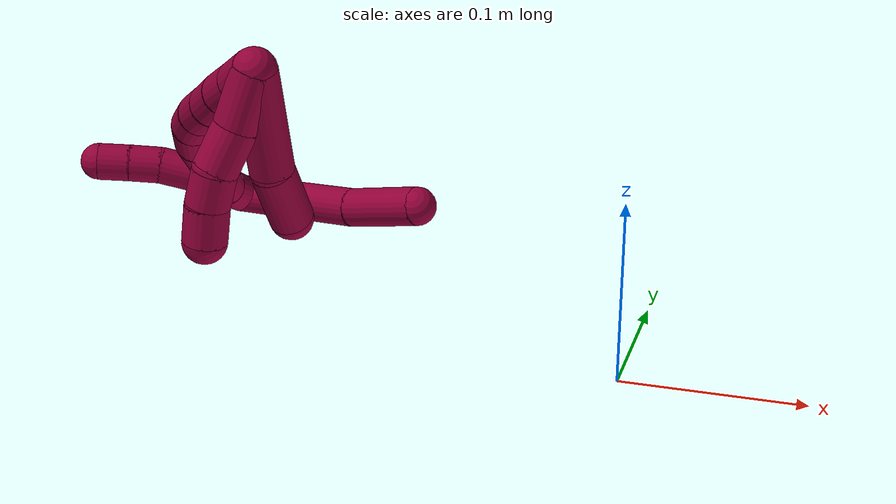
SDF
<sdf version="1.7">
 <world name="default">
  <model name="8">
   <static>0</static>
   <link name="8">
    <collision name="collision-cylinder-e_1_2_8">
     <pose>0.047901 0.003452 0.010753 -0.310615 1.33927 -0.246639</pose>
     <geometry><cylinder><radius>0.0125</radius><length>0.098428</length></cylinder></geometry>
     <surface>
      <friction><ode><mu>1.16</mu><mu2>1.16</mu2><slip1>0</slip1><slip2>0</slip2></ode></friction>
      <contact><ode><kp>1e+06</kp><kd>1</kd><max_vel>0</max_vel><min_depth>0.001</min_depth></ode></contact>
     </surface>
    </collision>
    <visual name="visual-cylinder-e_1_2_8">
     <pose>0.047901 0.003452 0.010753 -0.310615 1.33927 -0.246639</pose>
     <geometry><cylinder><radius>0.0125</radius><length>0.098428</length></cylinder></geometry>
     <material><ambient>0.584314 0 0.227451 1</ambient></material>
    </visual>
    <collision name="collision-cylinder-e_2_8_6">
     <pose>0.120201 0.011307 0.028591 -0.55604 1.24133 -0.402564</pose>
     <geometry><cylinder><radius>0.0125</radius><length>0.051572</length></cylinder></geometry>
     <surface>
      <friction><ode><mu>1.16</mu><mu2>1.16</mu2><slip1>0</slip1><slip2>0</slip2></ode></friction>
      <contact><ode><kp>1e+06</kp><kd>1</kd><max_vel>0</max_vel><min_depth>0.001</min_depth></ode></contact>
     </surface>
    </collision>
    <visual name="visual-cylinder-e_2_8_6">
     <pose>0.120201 0.011307 0.028591 -0.55604 1.24133 -0.402564</pose>
     <geometry><cylinder><radius>0.0125</radius><length>0.051572</length></cylinder></geometry>
     <material><ambient>0.584314 0 0.227451 1</ambient></material>
    </visual>
    <collision name="collision-cylinder-e_1_2_9">
     <pose>-0.011383 -0.001377 0.007382 0.184475 -0.987669 -0.099508</pose>
     <geometry><cylinder><radius>0.0125</radius><length>0.027274</length></cylinder></geometry>
     <surface>
      <friction><ode><mu>1.16</mu><mu2>1.16</mu2><slip1>0</slip1><slip2>0</slip2></ode></friction>
      <contact><ode><kp>1e+06</kp><kd>1</kd><max_vel>0</max_vel><min_depth>0.001</min_depth></ode></contact>
     </surface>
    </collision>
    <visual name="visual-cylinder-e_1_2_9">
     <pose>-0.011383 -0.001377 0.007382 0.184475 -0.987669 -0.099508</pose>
     <geometry><cylinder><radius>0.0125</radius><length>0.027274</length></cylinder></geometry>
     <material><ambient>0.584314 0 0.227451 1</ambient></material>
    </visual>
    <collision name="collision-cylinder-e_2_9_10">
     <pose>-0.035832 -0.006962 0.021718 0.544112 -1.01425 -0.307543</pose>
     <geometry><cylinder><radius>0.0125</radius><length>0.030774</length></cylinder></geometry>
     <surface>
      <friction><ode><mu>1.16</mu><mu2>1.16</mu2><slip1>0</slip1><slip2>0</slip2></ode></friction>
      <contact><ode><kp>1e+06</kp><kd>1</kd><max_vel>0</max_vel><min_depth>0.001</min_depth></ode></contact>
     </surface>
    </collision>
    <visual name="visual-cylinder-e_2_9_10">
     <pose>-0.035832 -0.006962 0.021718 0.544112 -1.01425 -0.307543</pose>
     <geometry><cylinder><radius>0.0125</radius><length>0.030774</length></cylinder></geometry>
     <material><ambient>0.584314 0 0.227451 1</ambient></material>
    </visual>
    <collision name="collision-cylinder-e_3_10_11">
     <pose>-0.057548 -0.01566 0.03265 0.845728 -0.964557 -0.462734</pose>
     <geometry><cylinder><radius>0.0125</radius><length>0.021055</length></cylinder></geometry>
     <surface>
      <friction><ode><mu>1.16</mu><mu2>1.16</mu2><slip1>0</slip1><slip2>0</slip2></ode></friction>
      <contact><ode><kp>1e+06</kp><kd>1</kd><max_vel>0</max_vel><min_depth>0.001</min_depth></ode></contact>
     </surface>
    </collision>
    <visual name="visual-cylinder-e_3_10_11">
     <pose>-0.057548 -0.01566 0.03265 0.845728 -0.964557 -0.462734</pose>
     <geometry><cylinder><radius>0.0125</radius><length>0.021055</length></cylinder></geometry>
     <material><ambient>0.584314 0 0.227451 1</ambient></material>
    </visual>
    <collision name="collision-cylinder-e_4_11_5">
     <pose>-0.07502 -0.024602 0.040024 0.91935 -1.00514 -0.531331</pose>
     <geometry><cylinder><radius>0.0125</radius><length>0.020897</length></cylinder></geometry>
     <surface>
      <friction><ode><mu>1.16</mu><mu2>1.16</mu2><slip1>0</slip1><slip2>0</slip2></ode></friction>
      <contact><ode><kp>1e+06</kp><kd>1</kd><max_vel>0</max_vel><min_depth>0.001</min_depth></ode></contact>
     </surface>
    </collision>
    <visual name="visual-cylinder-e_4_11_5">
     <pose>-0.07502 -0.024602 0.040024 0.91935 -1.00514 -0.531331</pose>
     <geometry><cylinder><radius>0.0125</radius><length>0.020897</length></cylinder></geometry>
     <material><ambient>0.584314 0 0.227451 1</ambient></material>
    </visual>
    <collision name="collision-cylinder-e_1_2_12">
     <pose>0.01011 -0.009393 0.024571 0.365131 0.366923 0.068485</pose>
     <geometry><cylinder><radius>0.0125</radius><length>0.056362</length></cylinder></geometry>
     <surface>
      <friction><ode><mu>1.16</mu><mu2>1.16</mu2><slip1>0</slip1><slip2>0</slip2></ode></friction>
      <contact><ode><kp>1e+06</kp><kd>1</kd><max_vel>0</max_vel><min_depth>0.001</min_depth></ode></contact>
     </surface>
    </collision>
    <visual name="visual-cylinder-e_1_2_12">
     <pose>0.01011 -0.009393 0.024571 0.365131 0.366923 0.068485</pose>
     <geometry><cylinder><radius>0.0125</radius><length>0.056362</length></cylinder></geometry>
     <material><ambient>0.584314 0 0.227451 1</ambient></material>
    </visual>
    <collision name="collision-cylinder-e_2_12_13">
     <pose>0.040285 -0.030026 0.102558 0.207398 0.352263 0.037041</pose>
     <geometry><cylinder><radius>0.0125</radius><length>0.116313</length></cylinder></geometry>
     <surface>
      <friction><ode><mu>1.16</mu><mu2>1.16</mu2><slip1>0</slip1><slip2>0</slip2></ode></friction>
      <contact><ode><kp>1e+06</kp><kd>1</kd><max_vel>0</max_vel><min_depth>0.001</min_depth></ode></contact>
     </surface>
    </collision>
    <visual name="visual-cylinder-e_2_12_13">
     <pose>0.040285 -0.030026 0.102558 0.207398 0.352263 0.037041</pose>
     <geometry><cylinder><radius>0.0125</radius><length>0.116313</length></cylinder></geometry>
     <material><ambient>0.584314 0 0.227451 1</ambient></material>
    </visual>
    <collision name="collision-cylinder-e_3_13_14">
     <pose>0.06522 -0.041835 0.167893 0.047783 0.387418 0.009375</pose>
     <geometry><cylinder><radius>0.0125</radius><length>0.025778</length></cylinder></geometry>
     <surface>
      <friction><ode><mu>1.16</mu><mu2>1.16</mu2><slip1>0</slip1><slip2>0</slip2></ode></friction>
      <contact><ode><kp>1e+06</kp><kd>1</kd><max_vel>0</max_vel><min_depth>0.001</min_depth></ode></contact>
     </surface>
    </collision>
    <visual name="visual-cylinder-e_3_13_14">
     <pose>0.06522 -0.041835 0.167893 0.047783 0.387418 0.009375</pose>
     <geometry><cylinder><radius>0.0125</radius><length>0.025778</length></cylinder></geometry>
     <material><ambient>0.584314 0 0.227451 1</ambient></material>
    </visual>
    <collision name="collision-cylinder-e_4_14_15">
     <pose>0.076176 -0.042216 0.18788 -0.023524 0.646314 -0.007879</pose>
     <geometry><cylinder><radius>0.0125</radius><length>0.020214</length></cylinder></geometry>
     <surface>
      <friction><ode><mu>1.16</mu><mu2>1.16</mu2><slip1>0</slip1><slip2>0</slip2></ode></friction>
      <contact><ode><kp>1e+06</kp><kd>1</kd><max_vel>0</max_vel><min_depth>0.001</min_depth></ode></contact>
     </surface>
    </collision>
    <visual name="visual-cylinder-e_4_14_15">
     <pose>0.076176 -0.042216 0.18788 -0.023524 0.646314 -0.007879</pose>
     <geometry><cylinder><radius>0.0125</radius><length>0.020214</length></cylinder></geometry>
     <material><ambient>0.584314 0 0.227451 1</ambient></material>
    </visual>
    <collision name="collision-cylinder-e_5_15_16">
     <pose>0.089494 -0.04177 0.203361 -0.034482 0.772517 -0.014024</pose>
     <geometry><cylinder><radius>0.0125</radius><length>0.020721</length></cylinder></geometry>
     <surface>
      <friction><ode><mu>1.16</mu><mu2>1.16</mu2><slip1>0</slip1><slip2>0</slip2></ode></friction>
      <contact><ode><kp>1e+06</kp><kd>1</kd><max_vel>0</max_vel><min_depth>0.001</min_depth></ode></contact>
     </surface>
    </collision>
    <visual name="visual-cylinder-e_5_15_16">
     <pose>0.089494 -0.04177 0.203361 -0.034482 0.772517 -0.014024</pose>
     <geometry><cylinder><radius>0.0125</radius><length>0.020721</length></cylinder></geometry>
     <material><ambient>0.584314 0 0.227451 1</ambient></material>
    </visual>
    <collision name="collision-cylinder-e_6_16_17">
     <pose>0.103719 -0.040659 0.21812 -0.115989 0.757644 -0.046213</pose>
     <geometry><cylinder><radius>0.0125</radius><length>0.020354</length></cylinder></geometry>
     <surface>
      <friction><ode><mu>1.16</mu><mu2>1.16</mu2><slip1>0</slip1><slip2>0</slip2></ode></friction>
      <contact><ode><kp>1e+06</kp><kd>1</kd><max_vel>0</max_vel><min_depth>0.001</min_depth></ode></contact>
     </surface>
    </collision>
    <visual name="visual-cylinder-e_6_16_17">
     <pose>0.103719 -0.040659 0.21812 -0.115989 0.757644 -0.046213</pose>
     <geometry><cylinder><radius>0.0125</radius><length>0.020354</length></cylinder></geometry>
     <material><ambient>0.584314 0 0.227451 1</ambient></material>
    </visual>
    <collision name="collision-cylinder-e_7_17_18">
     <pose>0.118067 -0.038613 0.232248 -0.173569 0.818115 -0.075398</pose>
     <geometry><cylinder><radius>0.0125</radius><length>0.020154</length></cylinder></geometry>
     <surface>
      <friction><ode><mu>1.16</mu><mu2>1.16</mu2><slip1>0</slip1><slip2>0</slip2></ode></friction>
      <contact><ode><kp>1e+06</kp><kd>1</kd><max_vel>0</max_vel><min_depth>0.001</min_depth></ode></contact>
     </surface>
    </collision>
    <visual name="visual-cylinder-e_7_17_18">
     <pose>0.118067 -0.038613 0.232248 -0.173569 0.818115 -0.075398</pose>
     <geometry><cylinder><radius>0.0125</radius><length>0.020154</length></cylinder></geometry>
     <material><ambient>0.584314 0 0.227451 1</ambient></material>
    </visual>
    <collision name="collision-cylinder-e_8_18_1">
     <pose>0.132642 -0.036208 0.245921 -0.174704 0.801333 -0.074156</pose>
     <geometry><cylinder><radius>0.0125</radius><length>0.020104</length></cylinder></geometry>
     <surface>
      <friction><ode><mu>1.16</mu><mu2>1.16</mu2><slip1>0</slip1><slip2>0</slip2></ode></friction>
      <contact><ode><kp>1e+06</kp><kd>1</kd><max_vel>0</max_vel><min_depth>0.001</min_depth></ode></contact>
     </surface>
    </collision>
    <visual name="visual-cylinder-e_8_18_1">
     <pose>0.132642 -0.036208 0.245921 -0.174704 0.801333 -0.074156</pose>
     <geometry><cylinder><radius>0.0125</radius><length>0.020104</length></cylinder></geometry>
     <material><ambient>0.584314 0 0.227451 1</ambient></material>
    </visual>
    <collision name="collision-cylinder-e_1_1_19">
     <pose>0.141679 -0.048016 0.22483 2.70595 0.058795 0.264167</pose>
     <geometry><cylinder><radius>0.0125</radius><length>0.061829</length></cylinder></geometry>
     <surface>
      <friction><ode><mu>1.16</mu><mu2>1.16</mu2><slip1>0</slip1><slip2>0</slip2></ode></friction>
      <contact><ode><kp>1e+06</kp><kd>1</kd><max_vel>0</max_vel><min_depth>0.001</min_depth></ode></contact>
     </surface>
    </collision>
    <visual name="visual-cylinder-e_1_1_19">
     <pose>0.141679 -0.048016 0.22483 2.70595 0.058795 0.264167</pose>
     <geometry><cylinder><radius>0.0125</radius><length>0.061829</length></cylinder></geometry>
     <material><ambient>0.584314 0 0.227451 1</ambient></material>
    </visual>
    <collision name="collision-cylinder-e_2_19_4">
     <pose>0.14454 -0.064639 0.178137 2.95154 0.054739 0.559398</pose>
     <geometry><cylinder><radius>0.0125</radius><length>0.038171</length></cylinder></geometry>
     <surface>
      <friction><ode><mu>1.16</mu><mu2>1.16</mu2><slip1>0</slip1><slip2>0</slip2></ode></friction>
      <contact><ode><kp>1e+06</kp><kd>1</kd><max_vel>0</max_vel><min_depth>0.001</min_depth></ode></contact>
     </surface>
    </collision>
    <visual name="visual-cylinder-e_2_19_4">
     <pose>0.14454 -0.064639 0.178137 2.95154 0.054739 0.559398</pose>
     <geometry><cylinder><radius>0.0125</radius><length>0.038171</length></cylinder></geometry>
     <material><ambient>0.584314 0 0.227451 1</ambient></material>
    </visual>
    <collision name="collision-cylinder-e_1_1_20">
     <pose>0.136655 -0.047025 0.242409 2.28348 -0.19902 -0.42974</pose>
     <geometry><cylinder><radius>0.0125</radius><length>0.032448</length></cylinder></geometry>
     <surface>
      <friction><ode><mu>1.16</mu><mu2>1.16</mu2><slip1>0</slip1><slip2>0</slip2></ode></friction>
      <contact><ode><kp>1e+06</kp><kd>1</kd><max_vel>0</max_vel><min_depth>0.001</min_depth></ode></contact>
     </surface>
    </collision>
    <visual name="visual-cylinder-e_1_1_20">
     <pose>0.136655 -0.047025 0.242409 2.28348 -0.19902 -0.42974</pose>
     <geometry><cylinder><radius>0.0125</radius><length>0.032448</length></cylinder></geometry>
     <material><ambient>0.584314 0 0.227451 1</ambient></material>
    </visual>
    <collision name="collision-cylinder-e_2_20_21">
     <pose>0.13045 -0.069971 0.22558 2.10329 -0.232339 -0.402887</pose>
     <geometry><cylinder><radius>0.0125</radius><length>0.026033</length></cylinder></geometry>
     <surface>
      <friction><ode><mu>1.16</mu><mu2>1.16</mu2><slip1>0</slip1><slip2>0</slip2></ode></friction>
      <contact><ode><kp>1e+06</kp><kd>1</kd><max_vel>0</max_vel><min_depth>0.001</min_depth></ode></contact>
     </surface>
    </collision>
    <visual name="visual-cylinder-e_2_20_21">
     <pose>0.13045 -0.069971 0.22558 2.10329 -0.232339 -0.402887</pose>
     <geometry><cylinder><radius>0.0125</radius><length>0.026033</length></cylinder></geometry>
     <material><ambient>0.584314 0 0.227451 1</ambient></material>
    </visual>
    <collision name="collision-cylinder-e_3_21_22">
     <pose>0.126151 -0.087961 0.212086 2.35522 -0.129485 -0.310103</pose>
     <geometry><cylinder><radius>0.0125</radius><length>0.020166</length></cylinder></geometry>
     <surface>
      <friction><ode><mu>1.16</mu><mu2>1.16</mu2><slip1>0</slip1><slip2>0</slip2></ode></friction>
      <contact><ode><kp>1e+06</kp><kd>1</kd><max_vel>0</max_vel><min_depth>0.001</min_depth></ode></contact>
     </surface>
    </collision>
    <visual name="visual-cylinder-e_3_21_22">
     <pose>0.126151 -0.087961 0.212086 2.35522 -0.129485 -0.310103</pose>
     <geometry><cylinder><radius>0.0125</radius><length>0.020166</length></cylinder></geometry>
     <material><ambient>0.584314 0 0.227451 1</ambient></material>
    </visual>
    <collision name="collision-cylinder-e_4_22_3">
     <pose>0.124608 -0.102021 0.19695 2.42843 -0.022567 -0.060566</pose>
     <geometry><cylinder><radius>0.0125</radius><length>0.021353</length></cylinder></geometry>
     <surface>
      <friction><ode><mu>1.16</mu><mu2>1.16</mu2><slip1>0</slip1><slip2>0</slip2></ode></friction>
      <contact><ode><kp>1e+06</kp><kd>1</kd><max_vel>0</max_vel><min_depth>0.001</min_depth></ode></contact>
     </surface>
    </collision>
    <visual name="visual-cylinder-e_4_22_3">
     <pose>0.124608 -0.102021 0.19695 2.42843 -0.022567 -0.060566</pose>
     <geometry><cylinder><radius>0.0125</radius><length>0.021353</length></cylinder></geometry>
     <material><ambient>0.584314 0 0.227451 1</ambient></material>
    </visual>
    <collision name="collision-sphere-3">
     <pose>0.124367 -0.109004 0.188877 0 -0 0</pose>
     <geometry><sphere><radius>0.0125</radius></sphere></geometry>
     <surface>
      <friction><ode><mu>1.16</mu><mu2>1.16</mu2><slip1>0</slip1><slip2>0</slip2></ode></friction>
      <contact><ode><kp>1e+06</kp><kd>1</kd><max_vel>0</max_vel><min_depth>0.001</min_depth></ode></contact>
     </surface>
    </collision>
    <visual name="visual-sphere-3">
     <pose>0.124367 -0.109004 0.188877 0 -0 0</pose>
     <geometry><sphere><radius>0.0125</radius></sphere></geometry>
     <material><ambient>0.584314 0 0.227451 1</ambient></material>
    </visual>
    <collision name="collision-sphere-22">
     <pose>0.124849 -0.095038 0.205022 0 -0 0</pose>
     <geometry><sphere><radius>0.0125</radius></sphere></geometry>
     <surface>
      <friction><ode><mu>1.16</mu><mu2>1.16</mu2><slip1>0</slip1><slip2>0</slip2></ode></friction>
      <contact><ode><kp>1e+06</kp><kd>1</kd><max_vel>0</max_vel><min_depth>0.001</min_depth></ode></contact>
     </surface>
    </collision>
    <visual name="visual-sphere-22">
     <pose>0.124849 -0.095038 0.205022 0 -0 0</pose>
     <geometry><sphere><radius>0.0125</radius></sphere></geometry>
     <material><ambient>0.584314 0 0.227451 1</ambient></material>
    </visual>
    <collision name="collision-sphere-21">
     <pose>0.127453 -0.080884 0.219149 0 -0 0</pose>
     <geometry><sphere><radius>0.0125</radius></sphere></geometry>
     <surface>
      <friction><ode><mu>1.16</mu><mu2>1.16</mu2><slip1>0</slip1><slip2>0</slip2></ode></friction>
      <contact><ode><kp>1e+06</kp><kd>1</kd><max_vel>0</max_vel><min_depth>0.001</min_depth></ode></contact>
     </surface>
    </collision>
    <visual name="visual-sphere-21">
     <pose>0.127453 -0.080884 0.219149 0 -0 0</pose>
     <geometry><sphere><radius>0.0125</radius></sphere></geometry>
     <material><ambient>0.584314 0 0.227451 1</ambient></material>
    </visual>
    <collision name="collision-sphere-20">
     <pose>0.133447 -0.059058 0.23201 0 -0 0</pose>
     <geometry><sphere><radius>0.0125</radius></sphere></geometry>
     <surface>
      <friction><ode><mu>1.16</mu><mu2>1.16</mu2><slip1>0</slip1><slip2>0</slip2></ode></friction>
      <contact><ode><kp>1e+06</kp><kd>1</kd><max_vel>0</max_vel><min_depth>0.001</min_depth></ode></contact>
     </surface>
    </collision>
    <visual name="visual-sphere-20">
     <pose>0.133447 -0.059058 0.23201 0 -0 0</pose>
     <geometry><sphere><radius>0.0125</radius></sphere></geometry>
     <material><ambient>0.584314 0 0.227451 1</ambient></material>
    </visual>
    <collision name="collision-sphere-4">
     <pose>0.145584 -0.068239 0.159424 0 -0 0</pose>
     <geometry><sphere><radius>0.0125</radius></sphere></geometry>
     <surface>
      <friction><ode><mu>1.16</mu><mu2>1.16</mu2><slip1>0</slip1><slip2>0</slip2></ode></friction>
      <contact><ode><kp>1e+06</kp><kd>1</kd><max_vel>0</max_vel><min_depth>0.001</min_depth></ode></contact>
     </surface>
    </collision>
    <visual name="visual-sphere-4">
     <pose>0.145584 -0.068239 0.159424 0 -0 0</pose>
     <geometry><sphere><radius>0.0125</radius></sphere></geometry>
     <material><ambient>0.584314 0 0.227451 1</ambient></material>
    </visual>
    <collision name="collision-sphere-11">
     <pose>-0.066199 -0.020149 0.036628 0 -0 0</pose>
     <geometry><sphere><radius>0.0125</radius></sphere></geometry>
     <surface>
      <friction><ode><mu>1.16</mu><mu2>1.16</mu2><slip1>0</slip1><slip2>0</slip2></ode></friction>
      <contact><ode><kp>1e+06</kp><kd>1</kd><max_vel>0</max_vel><min_depth>0.001</min_depth></ode></contact>
     </surface>
    </collision>
    <visual name="visual-sphere-11">
     <pose>-0.066199 -0.020149 0.036628 0 -0 0</pose>
     <geometry><sphere><radius>0.0125</radius></sphere></geometry>
     <material><ambient>0.584314 0 0.227451 1</ambient></material>
    </visual>
    <collision name="collision-sphere-10">
     <pose>-0.048896 -0.01117 0.028672 0 -0 0</pose>
     <geometry><sphere><radius>0.0125</radius></sphere></geometry>
     <surface>
      <friction><ode><mu>1.16</mu><mu2>1.16</mu2><slip1>0</slip1><slip2>0</slip2></ode></friction>
      <contact><ode><kp>1e+06</kp><kd>1</kd><max_vel>0</max_vel><min_depth>0.001</min_depth></ode></contact>
     </surface>
    </collision>
    <visual name="visual-sphere-10">
     <pose>-0.048896 -0.01117 0.028672 0 -0 0</pose>
     <geometry><sphere><radius>0.0125</radius></sphere></geometry>
     <material><ambient>0.584314 0 0.227451 1</ambient></material>
    </visual>
    <collision name="collision-sphere-6">
     <pose>0.1446 0.01571 0.035677 0 -0 0</pose>
     <geometry><sphere><radius>0.0125</radius></sphere></geometry>
     <surface>
      <friction><ode><mu>1.16</mu><mu2>1.16</mu2><slip1>0</slip1><slip2>0</slip2></ode></friction>
      <contact><ode><kp>1e+06</kp><kd>1</kd><max_vel>0</max_vel><min_depth>0.001</min_depth></ode></contact>
     </surface>
    </collision>
    <visual name="visual-sphere-6">
     <pose>0.1446 0.01571 0.035677 0 -0 0</pose>
     <geometry><sphere><radius>0.0125</radius></sphere></geometry>
     <material><ambient>0.584314 0 0.227451 1</ambient></material>
    </visual>
    <collision name="collision-sphere-9">
     <pose>-0.022767 -0.002755 0.014763 0 -0 0</pose>
     <geometry><sphere><radius>0.0125</radius></sphere></geometry>
     <surface>
      <friction><ode><mu>1.16</mu><mu2>1.16</mu2><slip1>0</slip1><slip2>0</slip2></ode></friction>
      <contact><ode><kp>1e+06</kp><kd>1</kd><max_vel>0</max_vel><min_depth>0.001</min_depth></ode></contact>
     </surface>
    </collision>
    <visual name="visual-sphere-9">
     <pose>-0.022767 -0.002755 0.014763 0 -0 0</pose>
     <geometry><sphere><radius>0.0125</radius></sphere></geometry>
     <material><ambient>0.584314 0 0.227451 1</ambient></material>
    </visual>
    <collision name="collision-sphere-2">
     <geometry><sphere><radius>0.0125</radius></sphere></geometry>
     <surface>
      <friction><ode><mu>1.16</mu><mu2>1.16</mu2><slip1>0</slip1><slip2>0</slip2></ode></friction>
      <contact><ode><kp>1e+06</kp><kd>1</kd><max_vel>0</max_vel><min_depth>0.001</min_depth></ode></contact>
     </surface>
    </collision>
    <visual name="visual-sphere-2">
     <geometry><sphere><radius>0.0125</radius></sphere></geometry>
     <material><ambient>0.584314 0 0.227451 1</ambient></material>
    </visual>
    <collision name="collision-sphere-19">
     <pose>0.143496 -0.061039 0.196851 0 -0 0</pose>
     <geometry><sphere><radius>0.0125</radius></sphere></geometry>
     <surface>
      <friction><ode><mu>1.16</mu><mu2>1.16</mu2><slip1>0</slip1><slip2>0</slip2></ode></friction>
      <contact><ode><kp>1e+06</kp><kd>1</kd><max_vel>0</max_vel><min_depth>0.001</min_depth></ode></contact>
     </surface>
    </collision>
    <visual name="visual-sphere-19">
     <pose>0.143496 -0.061039 0.196851 0 -0 0</pose>
     <geometry><sphere><radius>0.0125</radius></sphere></geometry>
     <material><ambient>0.584314 0 0.227451 1</ambient></material>
    </visual>
    <collision name="collision-sphere-8">
     <pose>0.095802 0.006903 0.021505 0 -0 0</pose>
     <geometry><sphere><radius>0.0125</radius></sphere></geometry>
     <surface>
      <friction><ode><mu>1.16</mu><mu2>1.16</mu2><slip1>0</slip1><slip2>0</slip2></ode></friction>
      <contact><ode><kp>1e+06</kp><kd>1</kd><max_vel>0</max_vel><min_depth>0.001</min_depth></ode></contact>
     </surface>
    </collision>
    <visual name="visual-sphere-8">
     <pose>0.095802 0.006903 0.021505 0 -0 0</pose>
     <geometry><sphere><radius>0.0125</radius></sphere></geometry>
     <material><ambient>0.584314 0 0.227451 1</ambient></material>
    </visual>
    <collision name="collision-sphere-5">
     <pose>-0.083842 -0.029056 0.043419 0 -0 0</pose>
     <geometry><sphere><radius>0.0125</radius></sphere></geometry>
     <surface>
      <friction><ode><mu>1.16</mu><mu2>1.16</mu2><slip1>0</slip1><slip2>0</slip2></ode></friction>
      <contact><ode><kp>1e+06</kp><kd>1</kd><max_vel>0</max_vel><min_depth>0.001</min_depth></ode></contact>
     </surface>
    </collision>
    <visual name="visual-sphere-5">
     <pose>-0.083842 -0.029056 0.043419 0 -0 0</pose>
     <geometry><sphere><radius>0.0125</radius></sphere></geometry>
     <material><ambient>0.584314 0 0.227451 1</ambient></material>
    </visual>
    <collision name="collision-sphere-12">
     <pose>0.02022 -0.018786 0.049142 0 -0 0</pose>
     <geometry><sphere><radius>0.0125</radius></sphere></geometry>
     <surface>
      <friction><ode><mu>1.16</mu><mu2>1.16</mu2><slip1>0</slip1><slip2>0</slip2></ode></friction>
      <contact><ode><kp>1e+06</kp><kd>1</kd><max_vel>0</max_vel><min_depth>0.001</min_depth></ode></contact>
     </surface>
    </collision>
    <visual name="visual-sphere-12">
     <pose>0.02022 -0.018786 0.049142 0 -0 0</pose>
     <geometry><sphere><radius>0.0125</radius></sphere></geometry>
     <material><ambient>0.584314 0 0.227451 1</ambient></material>
    </visual>
    <collision name="collision-sphere-13">
     <pose>0.06035 -0.041265 0.155973 0 -0 0</pose>
     <geometry><sphere><radius>0.0125</radius></sphere></geometry>
     <surface>
      <friction><ode><mu>1.16</mu><mu2>1.16</mu2><slip1>0</slip1><slip2>0</slip2></ode></friction>
      <contact><ode><kp>1e+06</kp><kd>1</kd><max_vel>0</max_vel><min_depth>0.001</min_depth></ode></contact>
     </surface>
    </collision>
    <visual name="visual-sphere-13">
     <pose>0.06035 -0.041265 0.155973 0 -0 0</pose>
     <geometry><sphere><radius>0.0125</radius></sphere></geometry>
     <material><ambient>0.584314 0 0.227451 1</ambient></material>
    </visual>
    <collision name="collision-sphere-14">
     <pose>0.070089 -0.042405 0.179813 0 -0 0</pose>
     <geometry><sphere><radius>0.0125</radius></sphere></geometry>
     <surface>
      <friction><ode><mu>1.16</mu><mu2>1.16</mu2><slip1>0</slip1><slip2>0</slip2></ode></friction>
      <contact><ode><kp>1e+06</kp><kd>1</kd><max_vel>0</max_vel><min_depth>0.001</min_depth></ode></contact>
     </surface>
    </collision>
    <visual name="visual-sphere-14">
     <pose>0.070089 -0.042405 0.179813 0 -0 0</pose>
     <geometry><sphere><radius>0.0125</radius></sphere></geometry>
     <material><ambient>0.584314 0 0.227451 1</ambient></material>
    </visual>
    <collision name="collision-sphere-15">
     <pose>0.082263 -0.042026 0.195946 0 -0 0</pose>
     <geometry><sphere><radius>0.0125</radius></sphere></geometry>
     <surface>
      <friction><ode><mu>1.16</mu><mu2>1.16</mu2><slip1>0</slip1><slip2>0</slip2></ode></friction>
      <contact><ode><kp>1e+06</kp><kd>1</kd><max_vel>0</max_vel><min_depth>0.001</min_depth></ode></contact>
     </surface>
    </collision>
    <visual name="visual-sphere-15">
     <pose>0.082263 -0.042026 0.195946 0 -0 0</pose>
     <geometry><sphere><radius>0.0125</radius></sphere></geometry>
     <material><ambient>0.584314 0 0.227451 1</ambient></material>
    </visual>
    <collision name="collision-sphere-16">
     <pose>0.096725 -0.041514 0.210777 0 -0 0</pose>
     <geometry><sphere><radius>0.0125</radius></sphere></geometry>
     <surface>
      <friction><ode><mu>1.16</mu><mu2>1.16</mu2><slip1>0</slip1><slip2>0</slip2></ode></friction>
      <contact><ode><kp>1e+06</kp><kd>1</kd><max_vel>0</max_vel><min_depth>0.001</min_depth></ode></contact>
     </surface>
    </collision>
    <visual name="visual-sphere-16">
     <pose>0.096725 -0.041514 0.210777 0 -0 0</pose>
     <geometry><sphere><radius>0.0125</radius></sphere></geometry>
     <material><ambient>0.584314 0 0.227451 1</ambient></material>
    </visual>
    <collision name="collision-sphere-17">
     <pose>0.110712 -0.039803 0.225463 0 -0 0</pose>
     <geometry><sphere><radius>0.0125</radius></sphere></geometry>
     <surface>
      <friction><ode><mu>1.16</mu><mu2>1.16</mu2><slip1>0</slip1><slip2>0</slip2></ode></friction>
      <contact><ode><kp>1e+06</kp><kd>1</kd><max_vel>0</max_vel><min_depth>0.001</min_depth></ode></contact>
     </surface>
    </collision>
    <visual name="visual-sphere-17">
     <pose>0.110712 -0.039803 0.225463 0 -0 0</pose>
     <geometry><sphere><radius>0.0125</radius></sphere></geometry>
     <material><ambient>0.584314 0 0.227451 1</ambient></material>
    </visual>
    <collision name="collision-sphere-18">
     <pose>0.125422 -0.037424 0.239034 0 -0 0</pose>
     <geometry><sphere><radius>0.0125</radius></sphere></geometry>
     <surface>
      <friction><ode><mu>1.16</mu><mu2>1.16</mu2><slip1>0</slip1><slip2>0</slip2></ode></friction>
      <contact><ode><kp>1e+06</kp><kd>1</kd><max_vel>0</max_vel><min_depth>0.001</min_depth></ode></contact>
     </surface>
    </collision>
    <visual name="visual-sphere-18">
     <pose>0.125422 -0.037424 0.239034 0 -0 0</pose>
     <geometry><sphere><radius>0.0125</radius></sphere></geometry>
     <material><ambient>0.584314 0 0.227451 1</ambient></material>
    </visual>
    <collision name="collision-sphere-1">
     <pose>0.139863 -0.034993 0.252808 0 -0 0</pose>
     <geometry><sphere><radius>0.0125</radius></sphere></geometry>
     <surface>
      <friction><ode><mu>1.16</mu><mu2>1.16</mu2><slip1>0</slip1><slip2>0</slip2></ode></friction>
      <contact><ode><kp>1e+06</kp><kd>1</kd><max_vel>0</max_vel><min_depth>0.001</min_depth></ode></contact>
     </surface>
    </collision>
    <visual name="visual-sphere-1">
     <pose>0.139863 -0.034993 0.252808 0 -0 0</pose>
     <geometry><sphere><radius>0.0125</radius></sphere></geometry>
     <material><ambient>0.584314 0 0.227451 1</ambient></material>
    </visual>
    <inertial>
     <pose>0.068695 -0.029415 0.116754 0 -0 0</pose>
     <mass>0.75</mass>
     <inertia>
      <ixx>0.000232</ixx>
      <ixy>0</ixy>
      <ixz>0</ixz>
      <iyy>0.000226</iyy>
      <iyz>0</iyz>
      <izz>-8.7e-05</izz>
     </inertia>
    </inertial>
   </link>
   <pose>-0.296887 0.192909 0.01247 0.714679 0.112637 -0.2417</pose>
  </model>
 </world>
</sdf>
